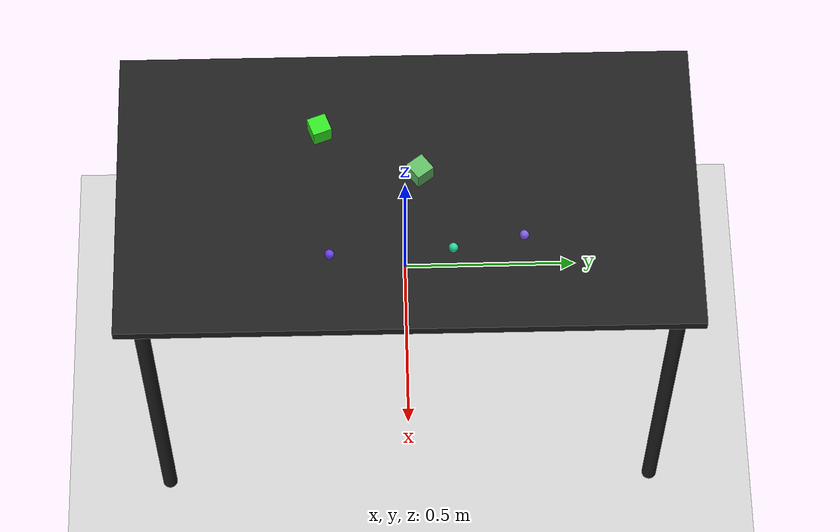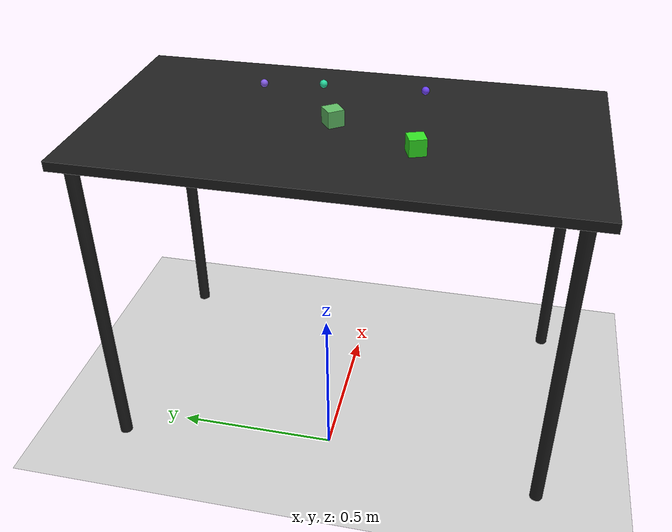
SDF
<?xml version="1.0" ?>
<sdf version="1.6">
  <world name="arm_world">
    <plugin filename="gz-sim-physics-system" name="gz::sim::systems::Physics">
      <engine>
        <filename>libgz-physics-bullet-featherstone-plugin.so</filename>
      </engine>
    </plugin>
    <plugin filename="gz-sim-user-commands-system" name="gz::sim::systems::UserCommands"/>
    <plugin filename="gz-sim-scene-broadcaster-system" name="gz::sim::systems::SceneBroadcaster"/>
    <plugin filename="gz-sim-sensors-system" name="gz::sim::systems::Sensors">
      <render_engine>ogre2</render_engine>
    </plugin>
    <gravity>0.0 0.0 -9.8</gravity>
    <scene>
      <shadows>false</shadows>
    </scene>
    <gui>
      <camera name="user_camera">
        <pose>0.75 -0.75 1.4 0 0.29 2.21</pose>
      </camera>
    </gui>
    <include>
      <uri>https://fuel.gazebosim.org/1.0/OpenRobotics/models/Sun</uri>
    </include>
    <model name="table">
      <static>true</static>
      <include>
        <uri>model://table</uri>
      </include>
      <pose>0.29 0 0 0 0 1.5708</pose>
    </model>
    <model name="ground_plane">
      <static>true</static>
      <link name="link">
        <collision name="collision">
          <geometry>
            <plane>
              <normal>0 0 1</normal>
            </plane>
          </geometry>
          <surface>
            <friction>
              <ode>
                <mu>1.0</mu>
                <mu2>1.0</mu2>
              </ode>
            </friction>
          </surface>
        </collision>
        <visual name="visual">
          <geometry>
            <plane>
              <normal>0 0 1</normal>
              <size>100 100</size>
            </plane>
          </geometry>
          <material>
            <ambient>0.8 0.8 0.8 1</ambient>
            <diffuse>0.8 0.8 0.8 1</diffuse>
            <specular>0.8 0.8 0.8 1</specular>
          </material>
        </visual>
      </link>
    </model>
    <model name="sphere_s_0">
      <pose>0.448 0.295 1.05 0 0 4.89</pose>
      <link name="sphere_s_0_link">
        <collision name="sphere_s_0_collision">
          <geometry>
            <sphere>
              <radius>0.0125</radius>
            </sphere>
          </geometry>
        </collision>
        <visual name="sphere_s_0_visual">
          <geometry>
            <sphere>
              <radius>0.0125</radius>
            </sphere>
          </geometry>
          <material>
            <ambient>0.52 0.36 0.91 1</ambient>
            <diffuse>0.52 0.36 0.91 1</diffuse>
          </material>
        </visual>
        <velocity_decay>
          <linear>1</linear>
          <angular>1</angular>
        </velocity_decay>
      </link>
    </model>
    <model name="cube_m_1">
      <pose>0.129 -0.224 1.05 0 0 1.93</pose>
      <link name="cube_m_1_link">
        <collision name="cube_m_1_collision">
          <geometry>
            <box>
              <size>0.05 0.05 0.05</size>
            </box>
          </geometry>
        </collision>
        <visual name="cube_m_1_visual">
          <geometry>
            <box>
              <size>0.05 0.05 0.05</size>
            </box>
          </geometry>
          <material>
            <ambient>0.2 0.88 0.14 1</ambient>
            <diffuse>0.2 0.88 0.14 1</diffuse>
          </material>
        </visual>
        <velocity_decay>
          <linear>1</linear>
          <angular>1</angular>
        </velocity_decay>
      </link>
    </model>
    <model name="sphere_s_2">
      <pose>0.494 -0.201 1.05 0 0 3.52</pose>
      <link name="sphere_s_2_link">
        <collision name="sphere_s_2_collision">
          <geometry>
            <sphere>
              <radius>0.0125</radius>
            </sphere>
          </geometry>
        </collision>
        <visual name="sphere_s_2_visual">
          <geometry>
            <sphere>
              <radius>0.0125</radius>
            </sphere>
          </geometry>
          <material>
            <ambient>0.42 0.25 0.95 1</ambient>
            <diffuse>0.42 0.25 0.95 1</diffuse>
          </material>
        </visual>
        <velocity_decay>
          <linear>1</linear>
          <angular>1</angular>
        </velocity_decay>
      </link>
    </model>
    <model name="cube_m_3">
      <pose>0.257 0.034 1.05 0 0 2.21</pose>
      <link name="cube_m_3_link">
        <collision name="cube_m_3_collision">
          <geometry>
            <box>
              <size>0.05 0.05 0.05</size>
            </box>
          </geometry>
        </collision>
        <visual name="cube_m_3_visual">
          <geometry>
            <box>
              <size>0.05 0.05 0.05</size>
            </box>
          </geometry>
          <material>
            <ambient>0.37 0.73 0.39 1</ambient>
            <diffuse>0.37 0.73 0.39 1</diffuse>
          </material>
        </visual>
        <velocity_decay>
          <linear>1</linear>
          <angular>1</angular>
        </velocity_decay>
      </link>
    </model>
    <model name="sphere_s_4">
      <pose>0.481 0.114 1.05 0 0 3.9</pose>
      <link name="sphere_s_4_link">
        <collision name="sphere_s_4_collision">
          <geometry>
            <sphere>
              <radius>0.0125</radius>
            </sphere>
          </geometry>
        </collision>
        <visual name="sphere_s_4_visual">
          <geometry>
            <sphere>
              <radius>0.0125</radius>
            </sphere>
          </geometry>
          <material>
            <ambient>0.15 0.85 0.62 1</ambient>
            <diffuse>0.15 0.85 0.62 1</diffuse>
          </material>
        </visual>
        <velocity_decay>
          <linear>1</linear>
          <angular>1</angular>
        </velocity_decay>
      </link>
    </model>
  </world>
</sdf>

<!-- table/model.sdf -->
<sdf version="1.5">
  <model name="table">
    <static>true</static>
    <link name="link">
      <collision name="surface">
        <pose>0 0 1.0 0 0 0</pose>
        <geometry>
          <box>
            <size>1.5 0.8 0.03</size>
          </box>
        </geometry>
        <surface>
          <friction>
            <ode>
              <mu>0.6</mu>
              <mu2>0.6</mu2>
            </ode>
          </friction>
        </surface>
      </collision>
      <visual name="surface">
        <pose>0 0 1.0 0 0 0</pose>
        <geometry>
          <box>
            <size>1.5 0.8 0.03</size>
          </box>
        </geometry>
        <material>
          <script>
            <uri>file://media/materials/scripts/gazebo.material</uri>
            <name>Gazebo/Black</name>
          </script>
        </material>
      </visual>
      <collision name="front_left_leg">
        <pose>0.68 0.38 0.5 0 0 0</pose>
        <geometry>
          <cylinder>
            <radius>0.02</radius>
            <length>1.0</length>
          </cylinder>
        </geometry>
      </collision>
      <visual name="front_left_leg">
        <pose>0.68 0.38 0.5 0 0 0</pose>
        <geometry>
          <cylinder>
            <radius>0.02</radius>
            <length>1.0</length>
          </cylinder>
        </geometry>
        <material>
          <script>
            <uri>file://media/materials/scripts/gazebo.material</uri>
            <name>Gazebo/Black</name>
          </script>
        </material>
      </visual>
      <collision name="front_right_leg">
        <pose>0.68 -0.38 0.5 0 0 0</pose>
        <geometry>
          <cylinder>
            <radius>0.02</radius>
            <length>1.0</length>
          </cylinder>
        </geometry>
      </collision>
      <visual name="front_right_leg">
        <pose>0.68 -0.38 0.5 0 0 0</pose>
        <geometry>
          <cylinder>
            <radius>0.02</radius>
            <length>1.0</length>
          </cylinder>
        </geometry>
        <material>
          <script>
            <uri>file://media/materials/scripts/gazebo.material</uri>
            <name>Gazebo/Black</name>
          </script>
        </material>
      </visual>
      <collision name="back_right_leg">
        <pose>-0.68 -0.38 0.5 0 0 0</pose>
        <geometry>
          <cylinder>
            <radius>0.02</radius>
            <length>1.0</length>
          </cylinder>
        </geometry>
      </collision>
      <visual name="back_right_leg">
        <pose>-0.68 -0.38 0.5 0 0 0</pose>
        <geometry>
          <cylinder>
            <radius>0.02</radius>
            <length>1.0</length>
          </cylinder>
        </geometry>
        <material>
          <script>
            <uri>file://media/materials/scripts/gazebo.material</uri>
            <name>Gazebo/Black</name>
          </script>
        </material>
      </visual>
      <collision name="back_left_leg">
        <pose>-0.68 0.38 0.5 0 0 0</pose>
        <geometry>
          <cylinder>
            <radius>0.02</radius>
            <length>1.0</length>
          </cylinder>
        </geometry>
      </collision>
      <visual name="back_left_leg">
        <pose>-0.68 0.38 0.5 0 0 0</pose>
        <geometry>
          <cylinder>
            <radius>0.02</radius>
            <length>1.0</length>
          </cylinder>
        </geometry>
        <material>
          <script>
            <uri>file://media/materials/scripts/gazebo.material</uri>
            <name>Gazebo/Black</name>
          </script>
        </material>
      </visual>
    </link>
  </model>
</sdf>
